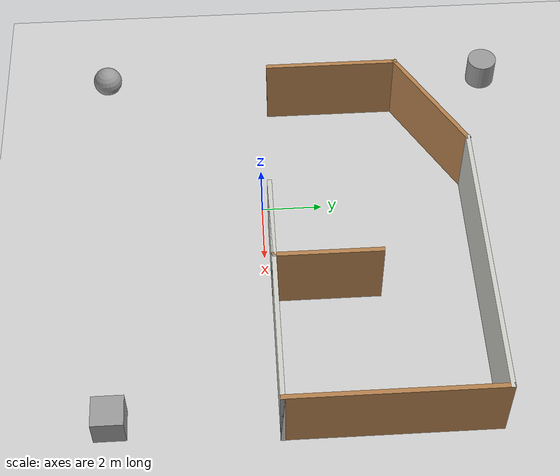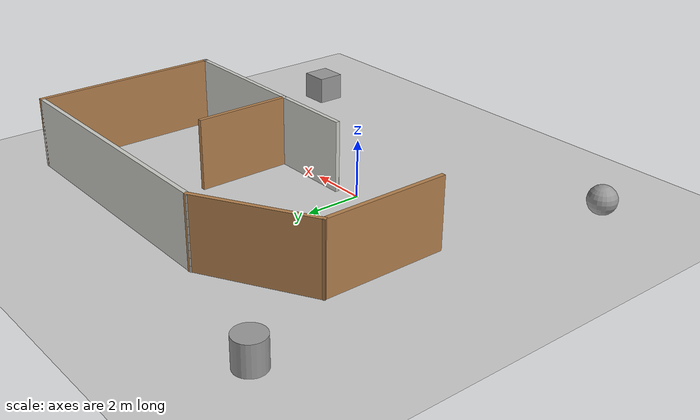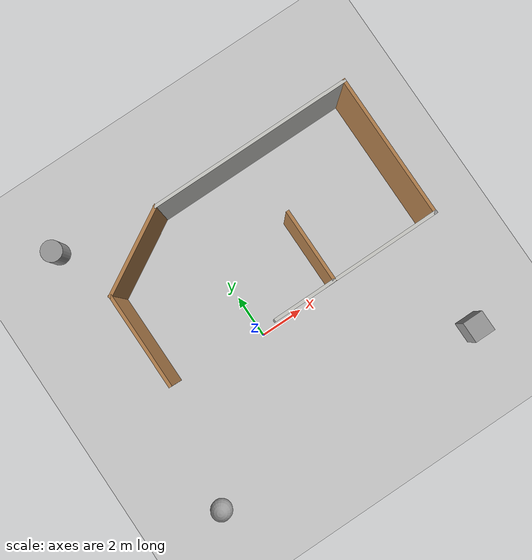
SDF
<sdf version="1.7">
 <world name="default">
  <light name="sun" type="directional">
   <pose>0 0 10 0 -0 0</pose>
   <diffuse>0.8 0.8 0.8 1</diffuse>
   <specular>0.2 0.2 0.2 1</specular>
   <attenuation>
    <range>1000</range>
    <constant>0.9</constant>
    <linear>0.01</linear>
    <quadratic>0.001</quadratic>
   </attenuation>
   <direction>-0.5 0.1 -0.9</direction>
   <spot><inner_angle>0</inner_angle><outer_angle>0</outer_angle><falloff>0</falloff></spot>
  </light>
  <model name="ground_plane">
   <static>1</static>
   <link name="link">
    <collision name="collision">
     <geometry><plane><normal>0 0 1</normal><size>100 100</size></plane></geometry>
     <surface>
      <contact><collide_bitmask>65535</collide_bitmask></contact>
      <friction><ode><mu>100</mu><mu2>50</mu2></ode></friction>
     </surface>
    </collision>
    <visual name="visual">
     <cast_shadows>0</cast_shadows>
     <geometry><plane><normal>0 0 1</normal><size>100 100</size></plane></geometry>
     <material>
      <script><uri>file://media/materials/scripts/gazebo.material</uri><name>Gazebo/Grey</name></script>
     </material>
    </visual>
   </link>
  </model>
  <gravity>0 0 -9.8</gravity>
  <magnetic_field>6e-06 2.3e-05 -4.2e-05</magnetic_field>
  <atmosphere type="adiabatic"/>
  <physics type="ode">
   <max_step_size>0.001</max_step_size>
   <real_time_factor>1</real_time_factor>
   <real_time_update_rate>1000</real_time_update_rate>
  </physics>
  <scene><ambient>0.4 0.4 0.4 1</ambient><background>0.7 0.7 0.7 1</background><shadows>1</shadows></scene>
  <spherical_coordinates>
   <surface_model>EARTH_WGS84</surface_model>
   <latitude_deg>0</latitude_deg>
   <longitude_deg>0</longitude_deg>
   <elevation>0</elevation>
   <heading_deg>0</heading_deg>
  </spherical_coordinates>
  <model name="new_world">
   <pose>2.17752 3.98677 0 0 -0 0</pose>
   <link name="Wall_0">
    <collision name="Wall_0_Collision">
     <geometry><box><size>4.5 0.15 2.5</size></box></geometry>
     <pose>0 0 1.25 0 -0 0</pose>
    </collision>
    <visual name="Wall_0_Visual">
     <pose>0 0 1.25 0 -0 0</pose>
     <geometry><box><size>4.5 0.15 2.5</size></box></geometry>
     <material>
      <script><uri>file://media/materials/scripts/gazebo.material</uri><name>Gazebo/Wood</name></script>
      <ambient>1 1 1 1</ambient>
     </material>
     <meta><layer>0</layer></meta>
    </visual>
    <pose>-6.44163 -1.3675 0 0 -0 1.5708</pose>
   </link>
   <link name="Wall_10">
    <collision name="Wall_10_Collision">
     <geometry><box><size>0.16 0.15 2.5</size></box></geometry>
     <pose>0 0 1.25 0 -0 0</pose>
    </collision>
    <visual name="Wall_10_Visual">
     <pose>0 0 1.25 0 -0 0</pose>
     <geometry><box><size>0.16 0.15 2.5</size></box></geometry>
     <material>
      <script><uri>file://media/materials/scripts/gazebo.material</uri><name>Gazebo/Grey</name></script>
      <ambient>1 1 1 1</ambient>
     </material>
     <meta><layer>0</layer></meta>
    </visual>
    <pose>1.47408 -3.7425 0 0 -0 0</pose>
   </link>
   <link name="Wall_11">
    <collision name="Wall_11_Collision">
     <geometry><box><size>3.5 0.15 2.5</size></box></geometry>
     <pose>0 0 1.25 0 -0 0</pose>
    </collision>
    <visual name="Wall_11_Visual">
     <pose>0 0 1.25 0 -0 0</pose>
     <geometry><box><size>3.5 0.15 2.5</size></box></geometry>
     <material>
      <script><uri>file://media/materials/scripts/gazebo.material</uri><name>Gazebo/Wood</name></script>
      <ambient>1 1 1 1</ambient>
     </material>
     <meta><layer>0</layer></meta>
    </visual>
    <pose>1.47908 -2.0675 0 0 -0 1.5708</pose>
   </link>
   <link name="Wall_4">
    <collision name="Wall_4_Collision">
     <geometry><box><size>4.25 0.15 2.5</size></box></geometry>
     <pose>0 0 1.25 0 -0 0</pose>
    </collision>
    <visual name="Wall_4_Visual">
     <pose>0 0 1.25 0 -0 0</pose>
     <geometry><box><size>4.25 0.15 2.5</size></box></geometry>
     <material>
      <script><uri>file://media/materials/scripts/gazebo.material</uri><name>Gazebo/Wood</name></script>
      <ambient>1 1 1 1</ambient>
     </material>
     <meta><layer>0</layer></meta>
    </visual>
    <pose>-4.66627 1.8325 0 0 -0 0.523599</pose>
   </link>
   <link name="Wall_5">
    <collision name="Wall_5_Collision">
     <geometry><box><size>9.5 0.15 2.5</size></box></geometry>
     <pose>0 0 1.25 0 -0 0</pose>
    </collision>
    <visual name="Wall_5_Visual">
     <pose>0 0 1.25 0 -0 0</pose>
     <geometry><box><size>9.5 0.15 2.5</size></box></geometry>
     <material>
      <script><uri>file://media/materials/scripts/gazebo.material</uri><name>Gazebo/CeilingTiled</name></script>
      <ambient>1 1 1 1</ambient>
     </material>
     <meta><layer>0</layer></meta>
    </visual>
    <pose>1.78408 2.8575 0 0 -0 0</pose>
   </link>
   <link name="Wall_6">
    <collision name="Wall_6_Collision">
     <geometry><box><size>6.75 0.15 2.5</size></box></geometry>
     <pose>0 0 1.25 0 -0 0</pose>
    </collision>
    <visual name="Wall_6_Visual">
     <pose>0 0 1.25 0 -0 0</pose>
     <geometry><box><size>6.75 0.15 2.5</size></box></geometry>
     <material>
      <script><uri>file://media/materials/scripts/gazebo.material</uri><name>Gazebo/Wood</name></script>
      <ambient>1 1 1 1</ambient>
     </material>
     <meta><layer>0</layer></meta>
    </visual>
    <pose>6.45908 -0.4425 0 0 -0 -1.5708</pose>
   </link>
   <link name="Wall_7">
    <collision name="Wall_7_Collision">
     <geometry><box><size>0.16 0.15 2.5</size></box></geometry>
     <pose>0 0 1.25 0 -0 0</pose>
    </collision>
    <visual name="Wall_7_Visual">
     <pose>0 0 1.25 0 -0 0</pose>
     <geometry><box><size>0.16 0.15 2.5</size></box></geometry>
     <material>
      <script><uri>file://media/materials/scripts/gazebo.material</uri><name>Gazebo/Grey</name></script>
      <ambient>1 1 1 1</ambient>
     </material>
     <meta><layer>0</layer></meta>
    </visual>
    <pose>6.46408 -3.7425 0 0 -0 0</pose>
   </link>
   <link name="Wall_8">
    <collision name="Wall_8_Collision">
     <geometry><box><size>8 0.15 2.5</size></box></geometry>
     <pose>0 0 1.25 0 -0 0</pose>
    </collision>
    <visual name="Wall_8_Visual">
     <pose>0 0 1.25 0 -0 0</pose>
     <geometry><box><size>8 0.15 2.5</size></box></geometry>
     <material>
      <script><uri>file://media/materials/scripts/gazebo.material</uri><name>Gazebo/CeilingTiled</name></script>
      <ambient>1 1 1 1</ambient>
     </material>
     <meta><layer>0</layer></meta>
    </visual>
    <pose>2.54408 -3.7425 0 0 -0 3.14159</pose>
   </link>
   <link name="Wall_9">
    <collision name="Wall_9_Collision">
     <geometry><box><size>3 0.15 2.5</size></box></geometry>
     <pose>0 0 1.25 0 -0 0</pose>
    </collision>
    <visual name="Wall_9_Visual">
     <pose>0 0 1.25 0 -0 0</pose>
     <geometry><box><size>3 0.15 2.5</size></box></geometry>
     <material>
      <script><uri>file://media/materials/scripts/gazebo.material</uri><name>Gazebo/CeilingTiled</name></script>
      <ambient>1 1 1 1</ambient>
     </material>
     <meta><layer>0</layer></meta>
    </visual>
    <pose>0.044078 -3.7425 0 0 -0 0</pose>
   </link>
   <static>1</static>
  </model>
  <model name="unit_sphere">
   <pose>-5.78288 -5.31113 0.5 0 -0 0</pose>
   <link name="link">
    <inertial>
     <mass>1</mass>
     <inertia><ixx>0.1</ixx><ixy>0</ixy><ixz>0</ixz><iyy>0.1</iyy><iyz>0</iyz><izz>0.1</izz></inertia>
    </inertial>
    <collision name="collision"><geometry><sphere><radius>0.5</radius></sphere></geometry></collision>
    <visual name="visual">
     <geometry><sphere><radius>0.5</radius></sphere></geometry>
     <material>
      <script><name>Gazebo/Grey</name><uri>file://media/materials/scripts/gazebo.material</uri></script>
     </material>
    </visual>
   </link>
  </model>
  <model name="unit_cylinder">
   <pose>-5.61968 8.20063 0.499993 -3e-06 -4e-06 -0</pose>
   <link name="link">
    <inertial>
     <mass>1</mass>
     <inertia><ixx>0.145833</ixx><ixy>0</ixy><ixz>0</ixz><iyy>0.145833</iyy><iyz>0</iyz><izz>0.125</izz></inertia>
    </inertial>
    <collision name="collision">
     <geometry><cylinder><radius>0.5</radius><length>1</length></cylinder></geometry>
    </collision>
    <visual name="visual">
     <geometry><cylinder><radius>0.5</radius><length>1</length></cylinder></geometry>
     <material>
      <script><name>Gazebo/Grey</name><uri>file://media/materials/scripts/gazebo.material</uri></script>
     </material>
    </visual>
   </link>
  </model>
  <model name="unit_box">
   <pose>7.95167 -4.91898 0.499995 0 1e-05 0</pose>
   <link name="link">
    <inertial>
     <mass>1</mass>
     <inertia>
      <ixx>0.166667</ixx>
      <ixy>0</ixy>
      <ixz>0</ixz>
      <iyy>0.166667</iyy>
      <iyz>0</iyz>
      <izz>0.166667</izz>
     </inertia>
    </inertial>
    <collision name="collision"><geometry><box><size>1 1 1</size></box></geometry></collision>
    <visual name="visual">
     <geometry><box><size>1 1 1</size></box></geometry>
     <material>
      <script><name>Gazebo/Grey</name><uri>file://media/materials/scripts/gazebo.material</uri></script>
     </material>
    </visual>
   </link>
  </model>
 </world>
</sdf>
